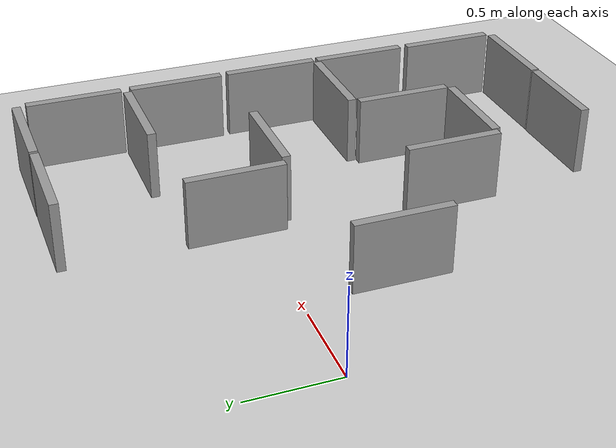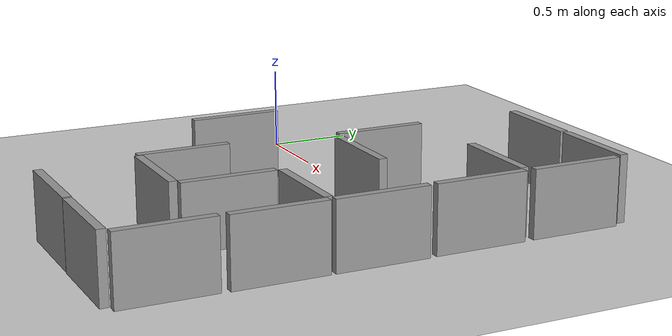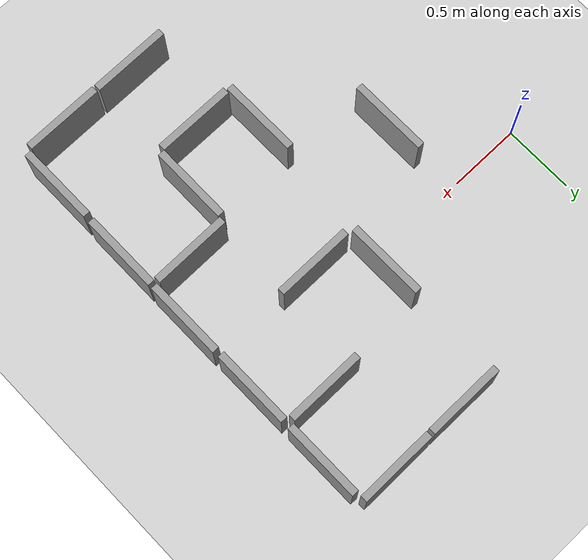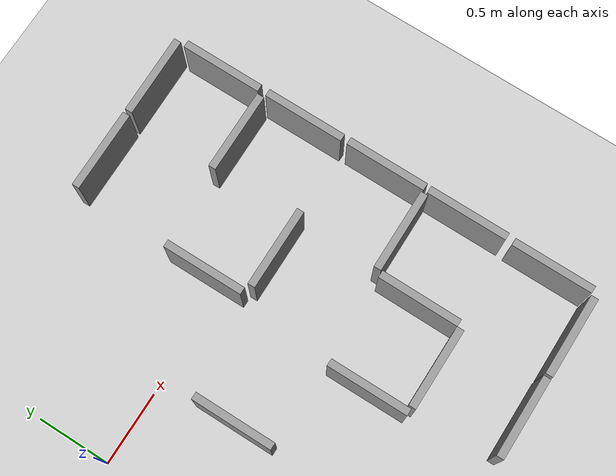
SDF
<sdf version="1.6">
 <world name="default">
  <model name="ground_plane">
   <static>1</static>
   <link name="link">
    <collision name="collision">
     <geometry><plane><normal>0 0 1</normal><size>100 100</size></plane></geometry>
     <surface>
      <contact><collide_bitmask>65535</collide_bitmask></contact>
      <friction><ode><mu>100</mu><mu2>50</mu2></ode></friction>
     </surface>
    </collision>
    <visual name="visual">
     <cast_shadows>0</cast_shadows>
     <geometry><plane><normal>0 0 1</normal><size>100 100</size></plane></geometry>
     <material>
      <script><uri>file://media/materials/scripts/gazebo.material</uri><name>Gazebo/Grey</name></script>
     </material>
    </visual>
   </link>
  </model>
  <model name="Maze_unit_clone_5_clone_1">
   <link name="link">
    <inertial>
     <mass>1</mass>
     <inertia>
      <ixx>0.166667</ixx>
      <ixy>0</ixy>
      <ixz>0</ixz>
      <iyy>0.166667</iyy>
      <iyz>0</iyz>
      <izz>0.166667</izz>
     </inertia>
    </inertial>
    <pose>-0.463146 -0.530916 -0 0 -0 0</pose>
    <visual name="visual">
     <geometry><box><size>0.05 0.55 0.4</size></box></geometry>
     <material>
      <script><name>Gazebo/Grey</name><uri>file://media/materials/scripts/gazebo.material</uri></script>
      <shader type="vertex"><normal_map>__default__</normal_map></shader>
      <ambient>0.933 0.933 0.925 1</ambient>
      <diffuse>0.7 0.7 0.7 1</diffuse>
      <specular>0.01 0.01 0.01 1</specular>
      <emissive>0 0 0 1</emissive>
     </material>
    </visual>
    <collision name="collision">
     <geometry><box><size>0.05 0.55 0.4</size></box></geometry>
     <surface>
      <friction>
       <ode><mu>1</mu><mu2>1</mu2><fdir1>0 0 0</fdir1><slip1>0</slip1><slip2>0</slip2></ode>
       <torsional>
        <coefficient>1</coefficient>
        <patch_radius>0</patch_radius>
        <surface_radius>0</surface_radius>
        <use_patch_radius>1</use_patch_radius>
        <ode><slip>0</slip></ode>
       </torsional>
      </friction>
      <bounce><restitution_coefficient>0</restitution_coefficient><threshold>1e+06</threshold></bounce>
      <contact>
       <collide_without_contact>0</collide_without_contact>
       <collide_without_contact_bitmask>1</collide_without_contact_bitmask>
       <collide_bitmask>1</collide_bitmask>
       <ode>
        <soft_cfm>0</soft_cfm>
        <soft_erp>0.2</soft_erp>
        <kp>1e+13</kp>
        <kd>1</kd>
        <max_vel>0.01</max_vel>
        <min_depth>0</min_depth>
       </ode>
       <bullet>
        <split_impulse>1</split_impulse>
        <split_impulse_penetration_threshold>-0.01</split_impulse_penetration_threshold>
        <soft_cfm>0</soft_cfm>
        <soft_erp>0.2</soft_erp>
        <kp>1e+13</kp>
        <kd>1</kd>
       </bullet>
      </contact>
     </surface>
    </collision>
   </link>
   <static>1</static>
   <pose>0.996717 -1.48825 0.199997 -0 6e-06 1.57653</pose>
  </model>
  <model name="Maze_unit_clone_5_clone_2">
   <link name="link">
    <inertial>
     <mass>1</mass>
     <inertia>
      <ixx>0.166667</ixx>
      <ixy>0</ixy>
      <ixz>0</ixz>
      <iyy>0.166667</iyy>
      <iyz>0</iyz>
      <izz>0.166667</izz>
     </inertia>
    </inertial>
    <pose>-0.463146 -0.530916 0 0 -0 0</pose>
    <visual name="visual">
     <geometry><box><size>0.05 0.55 0.4</size></box></geometry>
     <material>
      <script><name>Gazebo/Grey</name><uri>file://media/materials/scripts/gazebo.material</uri></script>
      <shader type="vertex"><normal_map>__default__</normal_map></shader>
      <ambient>0.933 0.933 0.925 1</ambient>
      <diffuse>0.7 0.7 0.7 1</diffuse>
      <specular>0.01 0.01 0.01 1</specular>
      <emissive>0 0 0 1</emissive>
     </material>
    </visual>
    <collision name="collision">
     <geometry><box><size>0.05 0.55 0.4</size></box></geometry>
     <surface>
      <friction>
       <ode><mu>1</mu><mu2>1</mu2><fdir1>0 0 0</fdir1><slip1>0</slip1><slip2>0</slip2></ode>
       <torsional>
        <coefficient>1</coefficient>
        <patch_radius>0</patch_radius>
        <surface_radius>0</surface_radius>
        <use_patch_radius>1</use_patch_radius>
        <ode><slip>0</slip></ode>
       </torsional>
      </friction>
      <bounce><restitution_coefficient>0</restitution_coefficient><threshold>1e+06</threshold></bounce>
      <contact>
       <collide_without_contact>0</collide_without_contact>
       <collide_without_contact_bitmask>1</collide_without_contact_bitmask>
       <collide_bitmask>1</collide_bitmask>
       <ode>
        <soft_cfm>0</soft_cfm>
        <soft_erp>0.2</soft_erp>
        <kp>1e+13</kp>
        <kd>1</kd>
        <max_vel>0.01</max_vel>
        <min_depth>0</min_depth>
       </ode>
       <bullet>
        <split_impulse>1</split_impulse>
        <split_impulse_penetration_threshold>-0.01</split_impulse_penetration_threshold>
        <soft_cfm>0</soft_cfm>
        <soft_erp>0.2</soft_erp>
        <kp>1e+13</kp>
        <kd>1</kd>
       </bullet>
      </contact>
     </surface>
    </collision>
   </link>
   <static>1</static>
   <pose>1.56188 -1.48819 0.2 0 -0 1.57668</pose>
  </model>
  <model name="Maze_unit_clone_5_clone_6">
   <link name="link">
    <inertial>
     <mass>1</mass>
     <inertia>
      <ixx>0.166667</ixx>
      <ixy>0</ixy>
      <ixz>0</ixz>
      <iyy>0.166667</iyy>
      <iyz>0</iyz>
      <izz>0.166667</izz>
     </inertia>
    </inertial>
    <pose>-0.463146 -0.530916 0 0 -0 0</pose>
    <visual name="visual">
     <geometry><box><size>0.05 0.55 0.4</size></box></geometry>
     <material>
      <script><name>Gazebo/Grey</name><uri>file://media/materials/scripts/gazebo.material</uri></script>
      <shader type="vertex"><normal_map>__default__</normal_map></shader>
      <ambient>0.933 0.933 0.925 1</ambient>
      <diffuse>0.7 0.7 0.7 1</diffuse>
      <specular>0.01 0.01 0.01 1</specular>
      <emissive>0 0 0 1</emissive>
     </material>
    </visual>
    <collision name="collision">
     <geometry><box><size>0.05 0.55 0.4</size></box></geometry>
     <surface>
      <friction>
       <ode><mu>1</mu><mu2>1</mu2><fdir1>0 0 0</fdir1><slip1>0</slip1><slip2>0</slip2></ode>
       <torsional>
        <coefficient>1</coefficient>
        <patch_radius>0</patch_radius>
        <surface_radius>0</surface_radius>
        <use_patch_radius>1</use_patch_radius>
        <ode><slip>0</slip></ode>
       </torsional>
      </friction>
      <bounce><restitution_coefficient>0</restitution_coefficient><threshold>1e+06</threshold></bounce>
      <contact>
       <collide_without_contact>0</collide_without_contact>
       <collide_without_contact_bitmask>1</collide_without_contact_bitmask>
       <collide_bitmask>1</collide_bitmask>
       <ode>
        <soft_cfm>0</soft_cfm>
        <soft_erp>0.2</soft_erp>
        <kp>1e+13</kp>
        <kd>1</kd>
        <max_vel>0.01</max_vel>
        <min_depth>0</min_depth>
       </ode>
       <bullet>
        <split_impulse>1</split_impulse>
        <split_impulse_penetration_threshold>-0.01</split_impulse_penetration_threshold>
        <soft_cfm>0</soft_cfm>
        <soft_erp>0.2</soft_erp>
        <kp>1e+13</kp>
        <kd>1</kd>
       </bullet>
      </contact>
     </surface>
    </collision>
   </link>
   <static>1</static>
   <pose>1.01331 1.51014 0.199994 -9e-06 -0 1.5766</pose>
  </model>
  <model name="Maze_unit_clone_5_clone_7">
   <link name="link">
    <inertial>
     <mass>1</mass>
     <inertia>
      <ixx>0.166667</ixx>
      <ixy>0</ixy>
      <ixz>0</ixz>
      <iyy>0.166667</iyy>
      <iyz>0</iyz>
      <izz>0.166667</izz>
     </inertia>
    </inertial>
    <pose>-0.463146 -0.530916 0 0 -0 0</pose>
    <visual name="visual">
     <geometry><box><size>0.05 0.55 0.4</size></box></geometry>
     <material>
      <script><name>Gazebo/Grey</name><uri>file://media/materials/scripts/gazebo.material</uri></script>
      <shader type="vertex"><normal_map>__default__</normal_map></shader>
      <ambient>0.933 0.933 0.925 1</ambient>
      <diffuse>0.7 0.7 0.7 1</diffuse>
      <specular>0.01 0.01 0.01 1</specular>
      <emissive>0 0 0 1</emissive>
     </material>
    </visual>
    <collision name="collision">
     <geometry><box><size>0.05 0.55 0.4</size></box></geometry>
     <surface>
      <friction>
       <ode><mu>1</mu><mu2>1</mu2><fdir1>0 0 0</fdir1><slip1>0</slip1><slip2>0</slip2></ode>
       <torsional>
        <coefficient>1</coefficient>
        <patch_radius>0</patch_radius>
        <surface_radius>0</surface_radius>
        <use_patch_radius>1</use_patch_radius>
        <ode><slip>0</slip></ode>
       </torsional>
      </friction>
      <bounce><restitution_coefficient>0</restitution_coefficient><threshold>1e+06</threshold></bounce>
      <contact>
       <collide_without_contact>0</collide_without_contact>
       <collide_without_contact_bitmask>1</collide_without_contact_bitmask>
       <collide_bitmask>1</collide_bitmask>
       <ode>
        <soft_cfm>0</soft_cfm>
        <soft_erp>0.2</soft_erp>
        <kp>1e+13</kp>
        <kd>1</kd>
        <max_vel>0.01</max_vel>
        <min_depth>0</min_depth>
       </ode>
       <bullet>
        <split_impulse>1</split_impulse>
        <split_impulse_penetration_threshold>-0.01</split_impulse_penetration_threshold>
        <soft_cfm>0</soft_cfm>
        <soft_erp>0.2</soft_erp>
        <kp>1e+13</kp>
        <kd>1</kd>
       </bullet>
      </contact>
     </surface>
    </collision>
   </link>
   <static>1</static>
   <pose>1.58339 1.513 0.199999 -1e-06 0 1.58128</pose>
  </model>
  <model name="Maze_unit_clone_2_clone_0_clone">
   <link name="link">
    <inertial>
     <mass>1</mass>
     <inertia>
      <ixx>0.166667</ixx>
      <ixy>0</ixy>
      <ixz>0</ixz>
      <iyy>0.166667</iyy>
      <iyz>0</iyz>
      <izz>0.166667</izz>
     </inertia>
    </inertial>
    <pose>-0.463146 -0.530916 0 0 -0 0</pose>
    <visual name="visual">
     <geometry><box><size>0.05 0.55 0.4</size></box></geometry>
     <material>
      <script><name>Gazebo/Grey</name><uri>file://media/materials/scripts/gazebo.material</uri></script>
      <shader type="vertex"><normal_map>__default__</normal_map></shader>
      <ambient>0.933 0.933 0.925 1</ambient>
      <diffuse>0.7 0.7 0.7 1</diffuse>
      <specular>0.01 0.01 0.01 1</specular>
      <emissive>0 0 0 1</emissive>
     </material>
    </visual>
    <collision name="collision">
     <geometry><box><size>0.05 0.55 0.4</size></box></geometry>
     <surface>
      <friction>
       <ode><mu>1</mu><mu2>1</mu2><fdir1>0 0 0</fdir1><slip1>0</slip1><slip2>0</slip2></ode>
       <torsional>
        <coefficient>1</coefficient>
        <patch_radius>0</patch_radius>
        <surface_radius>0</surface_radius>
        <use_patch_radius>1</use_patch_radius>
        <ode><slip>0</slip></ode>
       </torsional>
      </friction>
      <bounce><restitution_coefficient>0</restitution_coefficient><threshold>1e+06</threshold></bounce>
      <contact>
       <collide_without_contact>0</collide_without_contact>
       <collide_without_contact_bitmask>1</collide_without_contact_bitmask>
       <collide_bitmask>1</collide_bitmask>
       <ode>
        <soft_cfm>0</soft_cfm>
        <soft_erp>0.2</soft_erp>
        <kp>1e+13</kp>
        <kd>1</kd>
        <max_vel>0.01</max_vel>
        <min_depth>0</min_depth>
       </ode>
       <bullet>
        <split_impulse>1</split_impulse>
        <split_impulse_penetration_threshold>-0.01</split_impulse_penetration_threshold>
        <soft_cfm>0</soft_cfm>
        <soft_erp>0.2</soft_erp>
        <kp>1e+13</kp>
        <kd>1</kd>
       </bullet>
      </contact>
     </surface>
    </collision>
   </link>
   <static>1</static>
   <pose>2.86888 -1.11237 0.2 0 -0 0.0006</pose>
  </model>
  <model name="Maze_unit_clone_2_clone_0_clone_0">
   <link name="link">
    <inertial>
     <mass>1</mass>
     <inertia>
      <ixx>0.166667</ixx>
      <ixy>0</ixy>
      <ixz>0</ixz>
      <iyy>0.166667</iyy>
      <iyz>0</iyz>
      <izz>0.166667</izz>
     </inertia>
    </inertial>
    <pose>-0.463146 -0.530916 -0 0 -0 0</pose>
    <visual name="visual">
     <geometry><box><size>0.05 0.55 0.4</size></box></geometry>
     <material>
      <script><name>Gazebo/Grey</name><uri>file://media/materials/scripts/gazebo.material</uri></script>
      <shader type="vertex"><normal_map>__default__</normal_map></shader>
      <ambient>0.933 0.933 0.925 1</ambient>
      <diffuse>0.7 0.7 0.7 1</diffuse>
      <specular>0.01 0.01 0.01 1</specular>
      <emissive>0 0 0 1</emissive>
     </material>
    </visual>
    <collision name="collision">
     <geometry><box><size>0.05 0.55 0.4</size></box></geometry>
     <surface>
      <friction>
       <ode><mu>1</mu><mu2>1</mu2><fdir1>0 0 0</fdir1><slip1>0</slip1><slip2>0</slip2></ode>
       <torsional>
        <coefficient>1</coefficient>
        <patch_radius>0</patch_radius>
        <surface_radius>0</surface_radius>
        <use_patch_radius>1</use_patch_radius>
        <ode><slip>0</slip></ode>
       </torsional>
      </friction>
      <bounce><restitution_coefficient>0</restitution_coefficient><threshold>1e+06</threshold></bounce>
      <contact>
       <collide_without_contact>0</collide_without_contact>
       <collide_without_contact_bitmask>1</collide_without_contact_bitmask>
       <collide_bitmask>1</collide_bitmask>
       <ode>
        <soft_cfm>0</soft_cfm>
        <soft_erp>0.2</soft_erp>
        <kp>1e+13</kp>
        <kd>1</kd>
        <max_vel>0.01</max_vel>
        <min_depth>0</min_depth>
       </ode>
       <bullet>
        <split_impulse>1</split_impulse>
        <split_impulse_penetration_threshold>-0.01</split_impulse_penetration_threshold>
        <soft_cfm>0</soft_cfm>
        <soft_erp>0.2</soft_erp>
        <kp>1e+13</kp>
        <kd>1</kd>
       </bullet>
      </contact>
     </surface>
    </collision>
   </link>
   <static>1</static>
   <pose>2.87493 -0.515366 0.200001 1e-06 -1e-06 8.4e-05</pose>
  </model>
  <model name="Maze_unit_clone_2_clone_0_clone_1">
   <link name="link">
    <inertial>
     <mass>1</mass>
     <inertia>
      <ixx>0.166667</ixx>
      <ixy>0</ixy>
      <ixz>0</ixz>
      <iyy>0.166667</iyy>
      <iyz>0</iyz>
      <izz>0.166667</izz>
     </inertia>
    </inertial>
    <pose>-0.463146 -0.530916 0 0 -0 0</pose>
    <visual name="visual">
     <geometry><box><size>0.05 0.55 0.4</size></box></geometry>
     <material>
      <script><name>Gazebo/Grey</name><uri>file://media/materials/scripts/gazebo.material</uri></script>
      <shader type="vertex"><normal_map>__default__</normal_map></shader>
      <ambient>0.933 0.933 0.925 1</ambient>
      <diffuse>0.7 0.7 0.7 1</diffuse>
      <specular>0.01 0.01 0.01 1</specular>
      <emissive>0 0 0 1</emissive>
     </material>
    </visual>
    <collision name="collision">
     <geometry><box><size>0.05 0.55 0.4</size></box></geometry>
     <surface>
      <friction>
       <ode><mu>1</mu><mu2>1</mu2><fdir1>0 0 0</fdir1><slip1>0</slip1><slip2>0</slip2></ode>
       <torsional>
        <coefficient>1</coefficient>
        <patch_radius>0</patch_radius>
        <surface_radius>0</surface_radius>
        <use_patch_radius>1</use_patch_radius>
        <ode><slip>0</slip></ode>
       </torsional>
      </friction>
      <bounce><restitution_coefficient>0</restitution_coefficient><threshold>1e+06</threshold></bounce>
      <contact>
       <collide_without_contact>0</collide_without_contact>
       <collide_without_contact_bitmask>1</collide_without_contact_bitmask>
       <collide_bitmask>1</collide_bitmask>
       <ode>
        <soft_cfm>0</soft_cfm>
        <soft_erp>0.2</soft_erp>
        <kp>1e+13</kp>
        <kd>1</kd>
        <max_vel>0.01</max_vel>
        <min_depth>0</min_depth>
       </ode>
       <bullet>
        <split_impulse>1</split_impulse>
        <split_impulse_penetration_threshold>-0.01</split_impulse_penetration_threshold>
        <soft_cfm>0</soft_cfm>
        <soft_erp>0.2</soft_erp>
        <kp>1e+13</kp>
        <kd>1</kd>
       </bullet>
      </contact>
     </surface>
    </collision>
   </link>
   <static>1</static>
   <pose>2.87579 0.060918 0.2 0 0 -0.000181</pose>
  </model>
  <model name="Maze_unit_clone_2_clone_0_clone_2">
   <link name="link">
    <inertial>
     <mass>1</mass>
     <inertia>
      <ixx>0.166667</ixx>
      <ixy>0</ixy>
      <ixz>0</ixz>
      <iyy>0.166667</iyy>
      <iyz>0</iyz>
      <izz>0.166667</izz>
     </inertia>
    </inertial>
    <pose>-0.463146 -0.530916 0 0 -0 0</pose>
    <visual name="visual">
     <geometry><box><size>0.05 0.55 0.4</size></box></geometry>
     <material>
      <script><name>Gazebo/Grey</name><uri>file://media/materials/scripts/gazebo.material</uri></script>
      <shader type="vertex"><normal_map>__default__</normal_map></shader>
      <ambient>0.933 0.933 0.925 1</ambient>
      <diffuse>0.7 0.7 0.7 1</diffuse>
      <specular>0.01 0.01 0.01 1</specular>
      <emissive>0 0 0 1</emissive>
     </material>
    </visual>
    <collision name="collision">
     <geometry><box><size>0.05 0.55 0.4</size></box></geometry>
     <surface>
      <friction>
       <ode><mu>1</mu><mu2>1</mu2><fdir1>0 0 0</fdir1><slip1>0</slip1><slip2>0</slip2></ode>
       <torsional>
        <coefficient>1</coefficient>
        <patch_radius>0</patch_radius>
        <surface_radius>0</surface_radius>
        <use_patch_radius>1</use_patch_radius>
        <ode><slip>0</slip></ode>
       </torsional>
      </friction>
      <bounce><restitution_coefficient>0</restitution_coefficient><threshold>1e+06</threshold></bounce>
      <contact>
       <collide_without_contact>0</collide_without_contact>
       <collide_without_contact_bitmask>1</collide_without_contact_bitmask>
       <collide_bitmask>1</collide_bitmask>
       <ode>
        <soft_cfm>0</soft_cfm>
        <soft_erp>0.2</soft_erp>
        <kp>1e+13</kp>
        <kd>1</kd>
        <max_vel>0.01</max_vel>
        <min_depth>0</min_depth>
       </ode>
       <bullet>
        <split_impulse>1</split_impulse>
        <split_impulse_penetration_threshold>-0.01</split_impulse_penetration_threshold>
        <soft_cfm>0</soft_cfm>
        <soft_erp>0.2</soft_erp>
        <kp>1e+13</kp>
        <kd>1</kd>
       </bullet>
      </contact>
     </surface>
    </collision>
   </link>
   <static>1</static>
   <pose>2.87086 0.652058 0.2 0 -0 1.7e-05</pose>
  </model>
  <model name="Maze_unit_clone_2_clone_0_clone_3">
   <link name="link">
    <inertial>
     <mass>1</mass>
     <inertia>
      <ixx>0.166667</ixx>
      <ixy>0</ixy>
      <ixz>0</ixz>
      <iyy>0.166667</iyy>
      <iyz>0</iyz>
      <izz>0.166667</izz>
     </inertia>
    </inertial>
    <pose>-0.463146 -0.530916 -0 0 -0 0</pose>
    <visual name="visual">
     <geometry><box><size>0.05 0.55 0.4</size></box></geometry>
     <material>
      <script><name>Gazebo/Grey</name><uri>file://media/materials/scripts/gazebo.material</uri></script>
      <shader type="vertex"><normal_map>__default__</normal_map></shader>
      <ambient>0.933 0.933 0.925 1</ambient>
      <diffuse>0.7 0.7 0.7 1</diffuse>
      <specular>0.01 0.01 0.01 1</specular>
      <emissive>0 0 0 1</emissive>
     </material>
    </visual>
    <collision name="collision">
     <geometry><box><size>0.05 0.55 0.4</size></box></geometry>
     <surface>
      <friction>
       <ode><mu>1</mu><mu2>1</mu2><fdir1>0 0 0</fdir1><slip1>0</slip1><slip2>0</slip2></ode>
       <torsional>
        <coefficient>1</coefficient>
        <patch_radius>0</patch_radius>
        <surface_radius>0</surface_radius>
        <use_patch_radius>1</use_patch_radius>
        <ode><slip>0</slip></ode>
       </torsional>
      </friction>
      <bounce><restitution_coefficient>0</restitution_coefficient><threshold>1e+06</threshold></bounce>
      <contact>
       <collide_without_contact>0</collide_without_contact>
       <collide_without_contact_bitmask>1</collide_without_contact_bitmask>
       <collide_bitmask>1</collide_bitmask>
       <ode>
        <soft_cfm>0</soft_cfm>
        <soft_erp>0.2</soft_erp>
        <kp>1e+13</kp>
        <kd>1</kd>
        <max_vel>0.01</max_vel>
        <min_depth>0</min_depth>
       </ode>
       <bullet>
        <split_impulse>1</split_impulse>
        <split_impulse_penetration_threshold>-0.01</split_impulse_penetration_threshold>
        <soft_cfm>0</soft_cfm>
        <soft_erp>0.2</soft_erp>
        <kp>1e+13</kp>
        <kd>1</kd>
       </bullet>
      </contact>
     </surface>
    </collision>
   </link>
   <static>1</static>
   <pose>2.86846 1.25815 0.199998 0 5e-06 -3.9e-05</pose>
  </model>
  <model name="Maze_unit_clone_2_clone">
   <link name="link">
    <inertial>
     <mass>1</mass>
     <inertia>
      <ixx>0.166667</ixx>
      <ixy>0</ixy>
      <ixz>0</ixz>
      <iyy>0.166667</iyy>
      <iyz>0</iyz>
      <izz>0.166667</izz>
     </inertia>
    </inertial>
    <pose>-0.463146 -0.530916 -0 -0 -0 -0</pose>
    <visual name="visual">
     <geometry><box><size>0.05 0.55 0.4</size></box></geometry>
     <material>
      <script><name>Gazebo/Grey</name><uri>file://media/materials/scripts/gazebo.material</uri></script>
      <shader type="vertex"><normal_map>__default__</normal_map></shader>
      <ambient>0.933 0.933 0.925 1</ambient>
      <diffuse>0.7 0.7 0.7 1</diffuse>
      <specular>0.01 0.01 0.01 1</specular>
      <emissive>0 0 0 1</emissive>
     </material>
    </visual>
    <collision name="collision">
     <geometry><box><size>0.05 0.55 0.4</size></box></geometry>
     <surface>
      <friction>
       <ode><mu>1</mu><mu2>1</mu2><fdir1>0 0 0</fdir1><slip1>0</slip1><slip2>0</slip2></ode>
       <torsional>
        <coefficient>1</coefficient>
        <patch_radius>0</patch_radius>
        <surface_radius>0</surface_radius>
        <use_patch_radius>1</use_patch_radius>
        <ode><slip>0</slip></ode>
       </torsional>
      </friction>
      <bounce><restitution_coefficient>0</restitution_coefficient><threshold>1e+06</threshold></bounce>
      <contact>
       <collide_without_contact>0</collide_without_contact>
       <collide_without_contact_bitmask>1</collide_without_contact_bitmask>
       <collide_bitmask>1</collide_bitmask>
       <ode>
        <soft_cfm>0</soft_cfm>
        <soft_erp>0.2</soft_erp>
        <kp>1e+13</kp>
        <kd>1</kd>
        <max_vel>0.01</max_vel>
        <min_depth>0</min_depth>
       </ode>
       <bullet>
        <split_impulse>1</split_impulse>
        <split_impulse_penetration_threshold>-0.01</split_impulse_penetration_threshold>
        <soft_cfm>0</soft_cfm>
        <soft_erp>0.2</soft_erp>
        <kp>1e+13</kp>
        <kd>1</kd>
       </bullet>
      </contact>
     </surface>
    </collision>
   </link>
   <static>1</static>
   <pose>1.06573 -0.006938 0.2 0 1e-06 0.002808</pose>
  </model>
  <model name="Maze_unit_clone_2_clone_2">
   <link name="link">
    <inertial>
     <mass>1</mass>
     <inertia>
      <ixx>0.166667</ixx>
      <ixy>0</ixy>
      <ixz>0</ixz>
      <iyy>0.166667</iyy>
      <iyz>0</iyz>
      <izz>0.166667</izz>
     </inertia>
    </inertial>
    <pose>-0.463146 -0.530916 -0 0 -0 0</pose>
    <visual name="visual">
     <geometry><box><size>0.05 0.55 0.4</size></box></geometry>
     <material>
      <script><name>Gazebo/Grey</name><uri>file://media/materials/scripts/gazebo.material</uri></script>
      <shader type="vertex"><normal_map>__default__</normal_map></shader>
      <ambient>0.933 0.933 0.925 1</ambient>
      <diffuse>0.7 0.7 0.7 1</diffuse>
      <specular>0.01 0.01 0.01 1</specular>
      <emissive>0 0 0 1</emissive>
     </material>
    </visual>
    <collision name="collision">
     <geometry><box><size>0.05 0.55 0.4</size></box></geometry>
     <surface>
      <friction>
       <ode><mu>1</mu><mu2>1</mu2><fdir1>0 0 0</fdir1><slip1>0</slip1><slip2>0</slip2></ode>
       <torsional>
        <coefficient>1</coefficient>
        <patch_radius>0</patch_radius>
        <surface_radius>0</surface_radius>
        <use_patch_radius>1</use_patch_radius>
        <ode><slip>0</slip></ode>
       </torsional>
      </friction>
      <bounce><restitution_coefficient>0</restitution_coefficient><threshold>1e+06</threshold></bounce>
      <contact>
       <collide_without_contact>0</collide_without_contact>
       <collide_without_contact_bitmask>1</collide_without_contact_bitmask>
       <collide_bitmask>1</collide_bitmask>
       <ode>
        <soft_cfm>0</soft_cfm>
        <soft_erp>0.2</soft_erp>
        <kp>1e+13</kp>
        <kd>1</kd>
        <max_vel>0.01</max_vel>
        <min_depth>0</min_depth>
       </ode>
       <bullet>
        <split_impulse>1</split_impulse>
        <split_impulse_penetration_threshold>-0.01</split_impulse_penetration_threshold>
        <soft_cfm>0</soft_cfm>
        <soft_erp>0.2</soft_erp>
        <kp>1e+13</kp>
        <kd>1</kd>
       </bullet>
      </contact>
     </surface>
    </collision>
   </link>
   <static>1</static>
   <pose>1.73481 0.644346 0.2 1e-06 1e-06 0.004676</pose>
  </model>
  <model name="Maze_unit_clone_5_clone_14">
   <link name="link">
    <inertial>
     <mass>1</mass>
     <inertia>
      <ixx>0.166667</ixx>
      <ixy>0</ixy>
      <ixz>0</ixz>
      <iyy>0.166667</iyy>
      <iyz>0</iyz>
      <izz>0.166667</izz>
     </inertia>
    </inertial>
    <pose>-0.463146 -0.530916 0 0 -0 0</pose>
    <visual name="visual">
     <geometry><box><size>0.05 0.55 0.4</size></box></geometry>
     <material>
      <script><name>Gazebo/Grey</name><uri>file://media/materials/scripts/gazebo.material</uri></script>
      <shader type="vertex"><normal_map>__default__</normal_map></shader>
      <ambient>0.933 0.933 0.925 1</ambient>
      <diffuse>0.7 0.7 0.7 1</diffuse>
      <specular>0.01 0.01 0.01 1</specular>
      <emissive>0 0 0 1</emissive>
     </material>
    </visual>
    <collision name="collision">
     <geometry><box><size>0.05 0.55 0.4</size></box></geometry>
     <surface>
      <friction>
       <ode><mu>1</mu><mu2>1</mu2><fdir1>0 0 0</fdir1><slip1>0</slip1><slip2>0</slip2></ode>
       <torsional>
        <coefficient>1</coefficient>
        <patch_radius>0</patch_radius>
        <surface_radius>0</surface_radius>
        <use_patch_radius>1</use_patch_radius>
        <ode><slip>0</slip></ode>
       </torsional>
      </friction>
      <bounce><restitution_coefficient>0</restitution_coefficient><threshold>1e+06</threshold></bounce>
      <contact>
       <collide_without_contact>0</collide_without_contact>
       <collide_without_contact_bitmask>1</collide_without_contact_bitmask>
       <collide_bitmask>1</collide_bitmask>
       <ode>
        <soft_cfm>0</soft_cfm>
        <soft_erp>0.2</soft_erp>
        <kp>1e+13</kp>
        <kd>1</kd>
        <max_vel>0.01</max_vel>
        <min_depth>0</min_depth>
       </ode>
       <bullet>
        <split_impulse>1</split_impulse>
        <split_impulse_penetration_threshold>-0.01</split_impulse_penetration_threshold>
        <soft_cfm>0</soft_cfm>
        <soft_erp>0.2</soft_erp>
        <kp>1e+13</kp>
        <kd>1</kd>
       </bullet>
      </contact>
     </surface>
    </collision>
   </link>
   <static>1</static>
   <pose>1.5582 0.878041 0.199994 -9e-06 -0 1.5779</pose>
  </model>
  <model name="Maze_unit_clone_5_clone_11">
   <link name="link">
    <inertial>
     <mass>1</mass>
     <inertia>
      <ixx>0.166667</ixx>
      <ixy>0</ixy>
      <ixz>0</ixz>
      <iyy>0.166667</iyy>
      <iyz>0</iyz>
      <izz>0.166667</izz>
     </inertia>
    </inertial>
    <pose>-0.463146 -0.530916 -0 0 -0 0</pose>
    <visual name="visual">
     <geometry><box><size>0.05 0.55 0.4</size></box></geometry>
     <material>
      <script><name>Gazebo/Grey</name><uri>file://media/materials/scripts/gazebo.material</uri></script>
      <shader type="vertex"><normal_map>__default__</normal_map></shader>
      <ambient>0.933 0.933 0.925 1</ambient>
      <diffuse>0.7 0.7 0.7 1</diffuse>
      <specular>0.01 0.01 0.01 1</specular>
      <emissive>0 0 0 1</emissive>
     </material>
    </visual>
    <collision name="collision">
     <geometry><box><size>0.05 0.55 0.4</size></box></geometry>
     <surface>
      <friction>
       <ode><mu>1</mu><mu2>1</mu2><fdir1>0 0 0</fdir1><slip1>0</slip1><slip2>0</slip2></ode>
       <torsional>
        <coefficient>1</coefficient>
        <patch_radius>0</patch_radius>
        <surface_radius>0</surface_radius>
        <use_patch_radius>1</use_patch_radius>
        <ode><slip>0</slip></ode>
       </torsional>
      </friction>
      <bounce><restitution_coefficient>0</restitution_coefficient><threshold>1e+06</threshold></bounce>
      <contact>
       <collide_without_contact>0</collide_without_contact>
       <collide_without_contact_bitmask>1</collide_without_contact_bitmask>
       <collide_bitmask>1</collide_bitmask>
       <ode>
        <soft_cfm>0</soft_cfm>
        <soft_erp>0.2</soft_erp>
        <kp>1e+13</kp>
        <kd>1</kd>
        <max_vel>0.01</max_vel>
        <min_depth>0</min_depth>
       </ode>
       <bullet>
        <split_impulse>1</split_impulse>
        <split_impulse_penetration_threshold>-0.01</split_impulse_penetration_threshold>
        <soft_cfm>0</soft_cfm>
        <soft_erp>0.2</soft_erp>
        <kp>1e+13</kp>
        <kd>1</kd>
       </bullet>
      </contact>
     </surface>
    </collision>
   </link>
   <static>1</static>
   <pose>1.07237 0.273632 0.2 -0 1e-06 1.57659</pose>
  </model>
  <model name="Maze_unit_clone_5_clone_13">
   <link name="link">
    <inertial>
     <mass>1</mass>
     <inertia>
      <ixx>0.166667</ixx>
      <ixy>0</ixy>
      <ixz>0</ixz>
      <iyy>0.166667</iyy>
      <iyz>0</iyz>
      <izz>0.166667</izz>
     </inertia>
    </inertial>
    <pose>-0.463146 -0.530916 -0 0 -0 0</pose>
    <visual name="visual">
     <geometry><box><size>0.05 0.55 0.4</size></box></geometry>
     <material>
      <script><name>Gazebo/Grey</name><uri>file://media/materials/scripts/gazebo.material</uri></script>
      <shader type="vertex"><normal_map>__default__</normal_map></shader>
      <ambient>0.933 0.933 0.925 1</ambient>
      <diffuse>0.7 0.7 0.7 1</diffuse>
      <specular>0.01 0.01 0.01 1</specular>
      <emissive>0 0 0 1</emissive>
     </material>
    </visual>
    <collision name="collision">
     <geometry><box><size>0.05 0.55 0.4</size></box></geometry>
     <surface>
      <friction>
       <ode><mu>1</mu><mu2>1</mu2><fdir1>0 0 0</fdir1><slip1>0</slip1><slip2>0</slip2></ode>
       <torsional>
        <coefficient>1</coefficient>
        <patch_radius>0</patch_radius>
        <surface_radius>0</surface_radius>
        <use_patch_radius>1</use_patch_radius>
        <ode><slip>0</slip></ode>
       </torsional>
      </friction>
      <bounce><restitution_coefficient>0</restitution_coefficient><threshold>1e+06</threshold></bounce>
      <contact>
       <collide_without_contact>0</collide_without_contact>
       <collide_without_contact_bitmask>1</collide_without_contact_bitmask>
       <collide_bitmask>1</collide_bitmask>
       <ode>
        <soft_cfm>0</soft_cfm>
        <soft_erp>0.2</soft_erp>
        <kp>1e+13</kp>
        <kd>1</kd>
        <max_vel>0.01</max_vel>
        <min_depth>0</min_depth>
       </ode>
       <bullet>
        <split_impulse>1</split_impulse>
        <split_impulse_penetration_threshold>-0.01</split_impulse_penetration_threshold>
        <soft_cfm>0</soft_cfm>
        <soft_erp>0.2</soft_erp>
        <kp>1e+13</kp>
        <kd>1</kd>
       </bullet>
      </contact>
     </surface>
    </collision>
   </link>
   <static>1</static>
   <pose>1.56428 -0.304948 0.200004 0 -9e-06 1.58022</pose>
  </model>
  <model name="Maze_unit_clone_2_clone_1">
   <link name="link">
    <inertial>
     <mass>1</mass>
     <inertia>
      <ixx>0.166667</ixx>
      <ixy>0</ixy>
      <ixz>0</ixz>
      <iyy>0.166667</iyy>
      <iyz>0</iyz>
      <izz>0.166667</izz>
     </inertia>
    </inertial>
    <pose>-0.463146 -0.530916 0 0 -0 0</pose>
    <visual name="visual">
     <geometry><box><size>0.05 0.55 0.4</size></box></geometry>
     <material>
      <script><name>Gazebo/Grey</name><uri>file://media/materials/scripts/gazebo.material</uri></script>
      <shader type="vertex"><normal_map>__default__</normal_map></shader>
      <ambient>0.933 0.933 0.925 1</ambient>
      <diffuse>0.7 0.7 0.7 1</diffuse>
      <specular>0.01 0.01 0.01 1</specular>
      <emissive>0 0 0 1</emissive>
     </material>
    </visual>
    <collision name="collision">
     <geometry><box><size>0.05 0.55 0.4</size></box></geometry>
     <surface>
      <friction>
       <ode><mu>1</mu><mu2>1</mu2><fdir1>0 0 0</fdir1><slip1>0</slip1><slip2>0</slip2></ode>
       <torsional>
        <coefficient>1</coefficient>
        <patch_radius>0</patch_radius>
        <surface_radius>0</surface_radius>
        <use_patch_radius>1</use_patch_radius>
        <ode><slip>0</slip></ode>
       </torsional>
      </friction>
      <bounce><restitution_coefficient>0</restitution_coefficient><threshold>1e+06</threshold></bounce>
      <contact>
       <collide_without_contact>0</collide_without_contact>
       <collide_without_contact_bitmask>1</collide_without_contact_bitmask>
       <collide_bitmask>1</collide_bitmask>
       <ode>
        <soft_cfm>0</soft_cfm>
        <soft_erp>0.2</soft_erp>
        <kp>1e+13</kp>
        <kd>1</kd>
        <max_vel>0.01</max_vel>
        <min_depth>0</min_depth>
       </ode>
       <bullet>
        <split_impulse>1</split_impulse>
        <split_impulse_penetration_threshold>-0.01</split_impulse_penetration_threshold>
        <soft_cfm>0</soft_cfm>
        <soft_erp>0.2</soft_erp>
        <kp>1e+13</kp>
        <kd>1</kd>
       </bullet>
      </contact>
     </surface>
    </collision>
   </link>
   <static>1</static>
   <pose>2.27082 -0.544715 0.2 0 0 -0.004099</pose>
  </model>
  <model name="Maze_unit_clone_5_clone_12">
   <link name="link">
    <inertial>
     <mass>1</mass>
     <inertia>
      <ixx>0.166667</ixx>
      <ixy>0</ixy>
      <ixz>0</ixz>
      <iyy>0.166667</iyy>
      <iyz>0</iyz>
      <izz>0.166667</izz>
     </inertia>
    </inertial>
    <pose>-0.463146 -0.530916 -0 0 -0 0</pose>
    <visual name="visual">
     <geometry><box><size>0.05 0.55 0.4</size></box></geometry>
     <material>
      <script><name>Gazebo/Grey</name><uri>file://media/materials/scripts/gazebo.material</uri></script>
      <shader type="vertex"><normal_map>__default__</normal_map></shader>
      <ambient>0.933 0.933 0.925 1</ambient>
      <diffuse>0.7 0.7 0.7 1</diffuse>
      <specular>0.01 0.01 0.01 1</specular>
      <emissive>0 0 0 1</emissive>
     </material>
    </visual>
    <collision name="collision">
     <geometry><box><size>0.05 0.55 0.4</size></box></geometry>
     <surface>
      <friction>
       <ode><mu>1</mu><mu2>1</mu2><fdir1>0 0 0</fdir1><slip1>0</slip1><slip2>0</slip2></ode>
       <torsional>
        <coefficient>1</coefficient>
        <patch_radius>0</patch_radius>
        <surface_radius>0</surface_radius>
        <use_patch_radius>1</use_patch_radius>
        <ode><slip>0</slip></ode>
       </torsional>
      </friction>
      <bounce><restitution_coefficient>0</restitution_coefficient><threshold>1e+06</threshold></bounce>
      <contact>
       <collide_without_contact>0</collide_without_contact>
       <collide_without_contact_bitmask>1</collide_without_contact_bitmask>
       <collide_bitmask>1</collide_bitmask>
       <ode>
        <soft_cfm>0</soft_cfm>
        <soft_erp>0.2</soft_erp>
        <kp>1e+13</kp>
        <kd>1</kd>
        <max_vel>0.01</max_vel>
        <min_depth>0</min_depth>
       </ode>
       <bullet>
        <split_impulse>1</split_impulse>
        <split_impulse_penetration_threshold>-0.01</split_impulse_penetration_threshold>
        <soft_cfm>0</soft_cfm>
        <soft_erp>0.2</soft_erp>
        <kp>1e+13</kp>
        <kd>1</kd>
       </bullet>
      </contact>
     </surface>
    </collision>
   </link>
   <static>1</static>
   <pose>0.973288 -0.910175 0.199998 0 4e-06 1.57246</pose>
  </model>
  <model name="Maze_unit_clone_2_clone_0">
   <link name="link">
    <inertial>
     <mass>1</mass>
     <inertia>
      <ixx>0.166667</ixx>
      <ixy>0</ixy>
      <ixz>0</ixz>
      <iyy>0.166667</iyy>
      <iyz>0</iyz>
      <izz>0.166667</izz>
     </inertia>
    </inertial>
    <pose>-0.463146 -0.530916 0 0 -0 0</pose>
    <visual name="visual">
     <geometry><box><size>0.05 0.55 0.4</size></box></geometry>
     <material>
      <script><name>Gazebo/Grey</name><uri>file://media/materials/scripts/gazebo.material</uri></script>
      <shader type="vertex"><normal_map>__default__</normal_map></shader>
      <ambient>0.933 0.933 0.925 1</ambient>
      <diffuse>0.7 0.7 0.7 1</diffuse>
      <specular>0.01 0.01 0.01 1</specular>
      <emissive>0 0 0 1</emissive>
     </material>
    </visual>
    <collision name="collision">
     <geometry><box><size>0.05 0.55 0.4</size></box></geometry>
     <surface>
      <friction>
       <ode><mu>1</mu><mu2>1</mu2><fdir1>0 0 0</fdir1><slip1>0</slip1><slip2>0</slip2></ode>
       <torsional>
        <coefficient>1</coefficient>
        <patch_radius>0</patch_radius>
        <surface_radius>0</surface_radius>
        <use_patch_radius>1</use_patch_radius>
        <ode><slip>0</slip></ode>
       </torsional>
      </friction>
      <bounce><restitution_coefficient>0</restitution_coefficient><threshold>1e+06</threshold></bounce>
      <contact>
       <collide_without_contact>0</collide_without_contact>
       <collide_without_contact_bitmask>1</collide_without_contact_bitmask>
       <collide_bitmask>1</collide_bitmask>
       <ode>
        <soft_cfm>0</soft_cfm>
        <soft_erp>0.2</soft_erp>
        <kp>1e+13</kp>
        <kd>1</kd>
        <max_vel>0.01</max_vel>
        <min_depth>0</min_depth>
       </ode>
       <bullet>
        <split_impulse>1</split_impulse>
        <split_impulse_penetration_threshold>-0.01</split_impulse_penetration_threshold>
        <soft_cfm>0</soft_cfm>
        <soft_erp>0.2</soft_erp>
        <kp>1e+13</kp>
        <kd>1</kd>
       </bullet>
      </contact>
     </surface>
    </collision>
   </link>
   <static>1</static>
   <pose>1.65598 -0.566423 0.2 0 -0 0.004235</pose>
  </model>
 </world>
</sdf>
